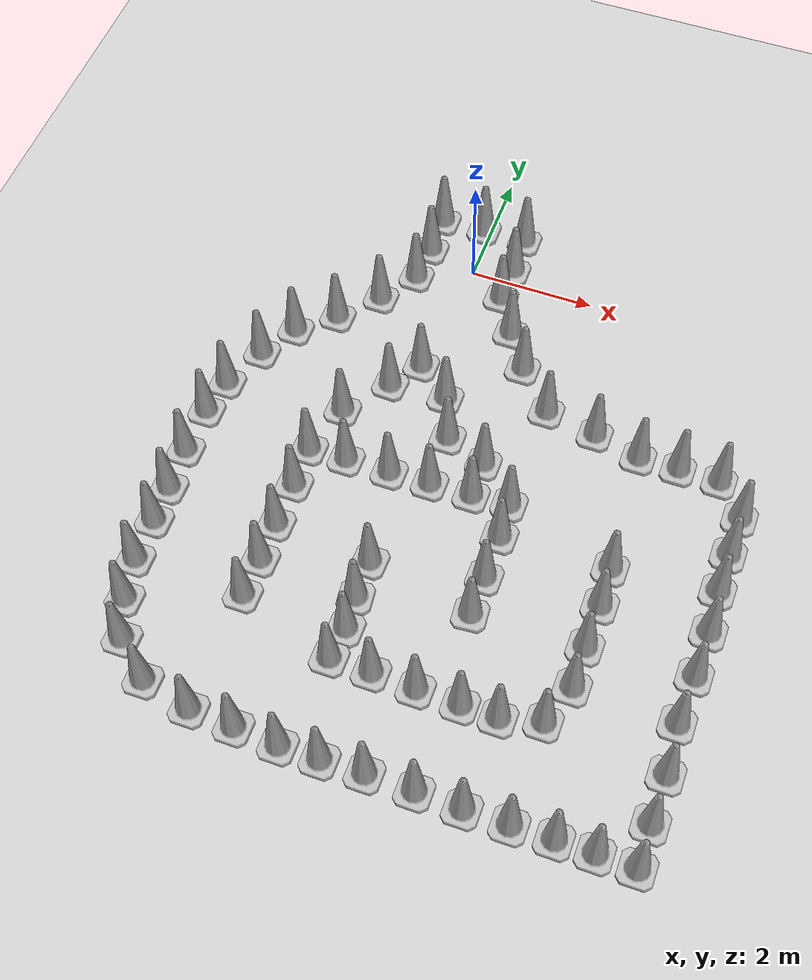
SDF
<sdf version="1.7">
 <world name="default">
  <light name="sun" type="directional">
   <pose>0 0 10 0 -0 0</pose>
   <diffuse>0.8 0.8 0.8 1</diffuse>
   <specular>0.2 0.2 0.2 1</specular>
   <attenuation>
    <range>1000</range>
    <constant>0.9</constant>
    <linear>0.01</linear>
    <quadratic>0.001</quadratic>
   </attenuation>
   <direction>-0.5 0.1 -0.9</direction>
   <spot><inner_angle>0</inner_angle><outer_angle>0</outer_angle><falloff>0</falloff></spot>
  </light>
  <model name="ground_plane">
   <static>1</static>
   <link name="link">
    <collision name="collision">
     <geometry><plane><normal>0 0 1</normal><size>100 100</size></plane></geometry>
     <surface><friction><ode><mu>100</mu><mu2>50</mu2></ode></friction></surface>
    </collision>
    <visual name="visual">
     <cast_shadows>0</cast_shadows>
     <geometry><plane><normal>0 0 1</normal><size>100 100</size></plane></geometry>
     <material>
      <script><uri>file://media/materials/scripts/gazebo.material</uri><name>Gazebo/Grey</name></script>
     </material>
    </visual>
   </link>
  </model>
  <gravity>0 0 -9.8</gravity>
  <magnetic_field>6e-06 2.3e-05 -4.2e-05</magnetic_field>
  <atmosphere type="adiabatic"/>
  <physics type="ode">
   <max_step_size>0.001</max_step_size>
   <real_time_factor>1</real_time_factor>
   <real_time_update_rate>1000</real_time_update_rate>
  </physics>
  <scene><ambient>0.4 0.4 0.4 1</ambient><background>0.7 0.7 0.7 1</background><shadows>1</shadows></scene>
  <audio><device>default</device></audio>
  <spherical_coordinates>
   <surface_model>EARTH_WGS84</surface_model>
   <latitude_deg>0</latitude_deg>
   <longitude_deg>0</longitude_deg>
   <elevation>0</elevation>
   <heading_deg>0</heading_deg>
  </spherical_coordinates>
  <model name="Construction Cone">
   <link name="link">
    <collision name="collision">
     <geometry>
      <mesh><scale>10 10 10</scale><uri>model://construction_cone/meshes/construction_cone.dae</uri></mesh>
     </geometry>
    </collision>
    <visual name="visual">
     <geometry>
      <mesh><scale>10 10 10</scale><uri>model://construction_cone/meshes/construction_cone.dae</uri></mesh>
     </geometry>
    </visual>
    <inertial>
     <inertia><ixx>1</ixx><ixy>0</ixy><ixz>0</ixz><iyy>1</iyy><iyz>0</iyz><izz>1</izz></inertia>
     <mass>1</mass>
    </inertial>
   </link>
   <pose>-0.809305 0.211558 -0 0 -1e-06 0</pose>
  </model>
  <model name="Construction Cone_0">
   <link name="link">
    <collision name="collision">
     <geometry>
      <mesh><scale>10 10 10</scale><uri>model://construction_cone/meshes/construction_cone.dae</uri></mesh>
     </geometry>
    </collision>
    <visual name="visual">
     <geometry>
      <mesh><scale>10 10 10</scale><uri>model://construction_cone/meshes/construction_cone.dae</uri></mesh>
     </geometry>
    </visual>
    <inertial>
     <inertia><ixx>1</ixx><ixy>0</ixy><ixz>0</ixz><iyy>1</iyy><iyz>0</iyz><izz>1</izz></inertia>
     <mass>1</mass>
    </inertial>
   </link>
   <pose>-0.824973 0.873573 -0 0 -0 0</pose>
  </model>
  <model name="Construction Cone_1">
   <link name="link">
    <collision name="collision">
     <geometry>
      <mesh><scale>10 10 10</scale><uri>model://construction_cone/meshes/construction_cone.dae</uri></mesh>
     </geometry>
    </collision>
    <visual name="visual">
     <geometry>
      <mesh><scale>10 10 10</scale><uri>model://construction_cone/meshes/construction_cone.dae</uri></mesh>
     </geometry>
    </visual>
    <inertial>
     <inertia><ixx>1</ixx><ixy>0</ixy><ixz>0</ixz><iyy>1</iyy><iyz>0</iyz><izz>1</izz></inertia>
     <mass>1</mass>
    </inertial>
   </link>
   <pose>-0.122 0.897798 -0 0 -1e-06 0</pose>
  </model>
  <model name="Construction Cone_2">
   <link name="link">
    <collision name="collision">
     <geometry>
      <mesh><scale>10 10 10</scale><uri>model://construction_cone/meshes/construction_cone.dae</uri></mesh>
     </geometry>
    </collision>
    <visual name="visual">
     <geometry>
      <mesh><scale>10 10 10</scale><uri>model://construction_cone/meshes/construction_cone.dae</uri></mesh>
     </geometry>
    </visual>
    <inertial>
     <inertia><ixx>1</ixx><ixy>0</ixy><ixz>0</ixz><iyy>1</iyy><iyz>0</iyz><izz>1</izz></inertia>
     <mass>1</mass>
    </inertial>
   </link>
   <pose>0.588672 0.899917 0 -0 -0 -0</pose>
  </model>
  <model name="Construction Cone_3">
   <link name="link">
    <collision name="collision">
     <geometry>
      <mesh><scale>10 10 10</scale><uri>model://construction_cone/meshes/construction_cone.dae</uri></mesh>
     </geometry>
    </collision>
    <visual name="visual">
     <geometry>
      <mesh><scale>10 10 10</scale><uri>model://construction_cone/meshes/construction_cone.dae</uri></mesh>
     </geometry>
    </visual>
    <inertial>
     <inertia><ixx>1</ixx><ixy>0</ixy><ixz>0</ixz><iyy>1</iyy><iyz>0</iyz><izz>1</izz></inertia>
     <mass>1</mass>
    </inertial>
   </link>
   <pose>0.612388 0.233933 -0 0 -1e-06 0</pose>
  </model>
  <model name="Construction Cone_4">
   <link name="link">
    <collision name="collision">
     <geometry>
      <mesh><scale>10 10 10</scale><uri>model://construction_cone/meshes/construction_cone.dae</uri></mesh>
     </geometry>
    </collision>
    <visual name="visual">
     <geometry>
      <mesh><scale>10 10 10</scale><uri>model://construction_cone/meshes/construction_cone.dae</uri></mesh>
     </geometry>
    </visual>
    <inertial>
     <inertia><ixx>1</ixx><ixy>0</ixy><ixz>0</ixz><iyy>1</iyy><iyz>0</iyz><izz>1</izz></inertia>
     <mass>1</mass>
    </inertial>
   </link>
   <pose>-0.844579 -0.414814 -0 0 -1e-06 0</pose>
  </model>
  <model name="Construction Cone_5">
   <link name="link">
    <collision name="collision">
     <geometry>
      <mesh><scale>10 10 10</scale><uri>model://construction_cone/meshes/construction_cone.dae</uri></mesh>
     </geometry>
    </collision>
    <visual name="visual">
     <geometry>
      <mesh><scale>10 10 10</scale><uri>model://construction_cone/meshes/construction_cone.dae</uri></mesh>
     </geometry>
    </visual>
    <inertial>
     <inertia><ixx>1</ixx><ixy>0</ixy><ixz>0</ixz><iyy>1</iyy><iyz>0</iyz><izz>1</izz></inertia>
     <mass>1</mass>
    </inertial>
   </link>
   <pose>0.598301 -0.373276 0 -1e-06 0 0</pose>
  </model>
  <model name="Construction Cone_6">
   <link name="link">
    <collision name="collision">
     <geometry>
      <mesh><scale>10 10 10</scale><uri>model://construction_cone/meshes/construction_cone.dae</uri></mesh>
     </geometry>
    </collision>
    <visual name="visual">
     <geometry>
      <mesh><scale>10 10 10</scale><uri>model://construction_cone/meshes/construction_cone.dae</uri></mesh>
     </geometry>
    </visual>
    <inertial>
     <inertia><ixx>1</ixx><ixy>0</ixy><ixz>0</ixz><iyy>1</iyy><iyz>0</iyz><izz>1</izz></inertia>
     <mass>1</mass>
    </inertial>
   </link>
   <pose>-0.155985 -2.07819 -0 0 -0 0</pose>
  </model>
  <model name="Construction Cone_7">
   <link name="link">
    <collision name="collision">
     <geometry>
      <mesh><scale>10 10 10</scale><uri>model://construction_cone/meshes/construction_cone.dae</uri></mesh>
     </geometry>
    </collision>
    <visual name="visual">
     <geometry>
      <mesh><scale>10 10 10</scale><uri>model://construction_cone/meshes/construction_cone.dae</uri></mesh>
     </geometry>
    </visual>
    <inertial>
     <inertia><ixx>1</ixx><ixy>0</ixy><ixz>0</ixz><iyy>1</iyy><iyz>0</iyz><izz>1</izz></inertia>
     <mass>1</mass>
    </inertial>
   </link>
   <pose>0.41274 -2.54412 -0 0 -0 0</pose>
  </model>
  <model name="Construction Cone_8">
   <link name="link">
    <collision name="collision">
     <geometry>
      <mesh><scale>10 10 10</scale><uri>model://construction_cone/meshes/construction_cone.dae</uri></mesh>
     </geometry>
    </collision>
    <visual name="visual">
     <geometry>
      <mesh><scale>10 10 10</scale><uri>model://construction_cone/meshes/construction_cone.dae</uri></mesh>
     </geometry>
    </visual>
    <inertial>
     <inertia><ixx>1</ixx><ixy>0</ixy><ixz>0</ixz><iyy>1</iyy><iyz>0</iyz><izz>1</izz></inertia>
     <mass>1</mass>
    </inertial>
   </link>
   <pose>-0.488465 -2.59078 -1e-05 0 0 -0.042077</pose>
  </model>
  <model name="Construction Cone_9">
   <link name="link">
    <collision name="collision">
     <geometry>
      <mesh><scale>10 10 10</scale><uri>model://construction_cone/meshes/construction_cone.dae</uri></mesh>
     </geometry>
    </collision>
    <visual name="visual">
     <geometry>
      <mesh><scale>10 10 10</scale><uri>model://construction_cone/meshes/construction_cone.dae</uri></mesh>
     </geometry>
    </visual>
    <inertial>
     <inertia><ixx>1</ixx><ixy>0</ixy><ixz>0</ixz><iyy>1</iyy><iyz>0</iyz><izz>1</izz></inertia>
     <mass>1</mass>
    </inertial>
   </link>
   <pose>-1.23728 -1.02411 -0 0 -0 0</pose>
  </model>
  <model name="Construction Cone_10">
   <link name="link">
    <collision name="collision">
     <geometry>
      <mesh><scale>10 10 10</scale><uri>model://construction_cone/meshes/construction_cone.dae</uri></mesh>
     </geometry>
    </collision>
    <visual name="visual">
     <geometry>
      <mesh><scale>10 10 10</scale><uri>model://construction_cone/meshes/construction_cone.dae</uri></mesh>
     </geometry>
    </visual>
    <inertial>
     <inertia><ixx>1</ixx><ixy>0</ixy><ixz>0</ixz><iyy>1</iyy><iyz>0</iyz><izz>1</izz></inertia>
     <mass>1</mass>
    </inertial>
   </link>
   <pose>-1.7548 -1.61581 -0 0 -1e-06 0</pose>
  </model>
  <model name="Construction Cone_11">
   <link name="link">
    <collision name="collision">
     <geometry>
      <mesh><scale>10 10 10</scale><uri>model://construction_cone/meshes/construction_cone.dae</uri></mesh>
     </geometry>
    </collision>
    <visual name="visual">
     <geometry>
      <mesh><scale>10 10 10</scale><uri>model://construction_cone/meshes/construction_cone.dae</uri></mesh>
     </geometry>
    </visual>
    <inertial>
     <inertia><ixx>1</ixx><ixy>0</ixy><ixz>0</ixz><iyy>1</iyy><iyz>0</iyz><izz>1</izz></inertia>
     <mass>1</mass>
    </inertial>
   </link>
   <pose>0.96804 -0.994563 -0 0 -0 0</pose>
  </model>
  <model name="Construction Cone_12">
   <link name="link">
    <collision name="collision">
     <geometry>
      <mesh><scale>10 10 10</scale><uri>model://construction_cone/meshes/construction_cone.dae</uri></mesh>
     </geometry>
    </collision>
    <visual name="visual">
     <geometry>
      <mesh><scale>10 10 10</scale><uri>model://construction_cone/meshes/construction_cone.dae</uri></mesh>
     </geometry>
    </visual>
    <inertial>
     <inertia><ixx>1</ixx><ixy>0</ixy><ixz>0</ixz><iyy>1</iyy><iyz>0</iyz><izz>1</izz></inertia>
     <mass>1</mass>
    </inertial>
   </link>
   <pose>1.36841 -1.60356 -0 0 -1e-06 0</pose>
  </model>
  <model name="Construction Cone_13">
   <link name="link">
    <collision name="collision">
     <geometry>
      <mesh><scale>10 10 10</scale><uri>model://construction_cone/meshes/construction_cone.dae</uri></mesh>
     </geometry>
    </collision>
    <visual name="visual">
     <geometry>
      <mesh><scale>10 10 10</scale><uri>model://construction_cone/meshes/construction_cone.dae</uri></mesh>
     </geometry>
    </visual>
    <inertial>
     <inertia><ixx>1</ixx><ixy>0</ixy><ixz>0</ixz><iyy>1</iyy><iyz>0</iyz><izz>1</izz></inertia>
     <mass>1</mass>
    </inertial>
   </link>
   <pose>1.9692 -2.26161 -0 0 -0 0</pose>
  </model>
  <model name="Construction Cone_14">
   <link name="link">
    <collision name="collision">
     <geometry>
      <mesh><scale>10 10 10</scale><uri>model://construction_cone/meshes/construction_cone.dae</uri></mesh>
     </geometry>
    </collision>
    <visual name="visual">
     <geometry>
      <mesh><scale>10 10 10</scale><uri>model://construction_cone/meshes/construction_cone.dae</uri></mesh>
     </geometry>
    </visual>
    <inertial>
     <inertia><ixx>1</ixx><ixy>0</ixy><ixz>0</ixz><iyy>1</iyy><iyz>0</iyz><izz>1</izz></inertia>
     <mass>1</mass>
    </inertial>
   </link>
   <pose>-2.62236 -2.6878 0 -0 -0 -0</pose>
  </model>
  <model name="Construction Cone_15">
   <link name="link">
    <collision name="collision">
     <geometry>
      <mesh><scale>10 10 10</scale><uri>model://construction_cone/meshes/construction_cone.dae</uri></mesh>
     </geometry>
    </collision>
    <visual name="visual">
     <geometry>
      <mesh><scale>10 10 10</scale><uri>model://construction_cone/meshes/construction_cone.dae</uri></mesh>
     </geometry>
    </visual>
    <inertial>
     <inertia><ixx>1</ixx><ixy>0</ixy><ixz>0</ixz><iyy>1</iyy><iyz>0</iyz><izz>1</izz></inertia>
     <mass>1</mass>
    </inertial>
   </link>
   <pose>-1.01192 -3.28616 -0 0 -1e-06 0</pose>
  </model>
  <model name="Construction Cone_16">
   <link name="link">
    <collision name="collision">
     <geometry>
      <mesh><scale>10 10 10</scale><uri>model://construction_cone/meshes/construction_cone.dae</uri></mesh>
     </geometry>
    </collision>
    <visual name="visual">
     <geometry>
      <mesh><scale>10 10 10</scale><uri>model://construction_cone/meshes/construction_cone.dae</uri></mesh>
     </geometry>
    </visual>
    <inertial>
     <inertia><ixx>1</ixx><ixy>0</ixy><ixz>0</ixz><iyy>1</iyy><iyz>0</iyz><izz>1</izz></inertia>
     <mass>1</mass>
    </inertial>
   </link>
   <pose>-0.630844 -4.11437 0 -0 -0 -0</pose>
  </model>
  <model name="Construction Cone_17">
   <link name="link">
    <collision name="collision">
     <geometry>
      <mesh><scale>10 10 10</scale><uri>model://construction_cone/meshes/construction_cone.dae</uri></mesh>
     </geometry>
    </collision>
    <visual name="visual">
     <geometry>
      <mesh><scale>10 10 10</scale><uri>model://construction_cone/meshes/construction_cone.dae</uri></mesh>
     </geometry>
    </visual>
    <inertial>
     <inertia><ixx>1</ixx><ixy>0</ixy><ixz>0</ixz><iyy>1</iyy><iyz>0</iyz><izz>1</izz></inertia>
     <mass>1</mass>
    </inertial>
   </link>
   <pose>-2.90275 -3.40357 -0 0 -1e-06 0</pose>
  </model>
  <model name="Construction Cone_18">
   <link name="link">
    <collision name="collision">
     <geometry>
      <mesh><scale>10 10 10</scale><uri>model://construction_cone/meshes/construction_cone.dae</uri></mesh>
     </geometry>
    </collision>
    <visual name="visual">
     <geometry>
      <mesh><scale>10 10 10</scale><uri>model://construction_cone/meshes/construction_cone.dae</uri></mesh>
     </geometry>
    </visual>
    <inertial>
     <inertia><ixx>1</ixx><ixy>0</ixy><ixz>0</ixz><iyy>1</iyy><iyz>0</iyz><izz>1</izz></inertia>
     <mass>1</mass>
    </inertial>
   </link>
   <pose>-2.99195 -4.00526 -0 0 -0 0</pose>
  </model>
  <model name="Construction Cone_19">
   <link name="link">
    <collision name="collision">
     <geometry>
      <mesh><scale>10 10 10</scale><uri>model://construction_cone/meshes/construction_cone.dae</uri></mesh>
     </geometry>
    </collision>
    <visual name="visual">
     <geometry>
      <mesh><scale>10 10 10</scale><uri>model://construction_cone/meshes/construction_cone.dae</uri></mesh>
     </geometry>
    </visual>
    <inertial>
     <inertia><ixx>1</ixx><ixy>0</ixy><ixz>0</ixz><iyy>1</iyy><iyz>0</iyz><izz>1</izz></inertia>
     <mass>1</mass>
    </inertial>
   </link>
   <pose>0.688549 -3.22558 -0 1e-06 -0 0</pose>
  </model>
  <model name="Construction Cone_20">
   <link name="link">
    <collision name="collision">
     <geometry>
      <mesh><scale>10 10 10</scale><uri>model://construction_cone/meshes/construction_cone.dae</uri></mesh>
     </geometry>
    </collision>
    <visual name="visual">
     <geometry>
      <mesh><scale>10 10 10</scale><uri>model://construction_cone/meshes/construction_cone.dae</uri></mesh>
     </geometry>
    </visual>
    <inertial>
     <inertia><ixx>1</ixx><ixy>0</ixy><ixz>0</ixz><iyy>1</iyy><iyz>0</iyz><izz>1</izz></inertia>
     <mass>1</mass>
    </inertial>
   </link>
   <pose>1.35417 -3.48511 -1e-05 -1e-06 0 0</pose>
  </model>
  <model name="Construction Cone_21">
   <link name="link">
    <collision name="collision">
     <geometry>
      <mesh><scale>10 10 10</scale><uri>model://construction_cone/meshes/construction_cone.dae</uri></mesh>
     </geometry>
    </collision>
    <visual name="visual">
     <geometry>
      <mesh><scale>10 10 10</scale><uri>model://construction_cone/meshes/construction_cone.dae</uri></mesh>
     </geometry>
    </visual>
    <inertial>
     <inertia><ixx>1</ixx><ixy>0</ixy><ixz>0</ixz><iyy>1</iyy><iyz>0</iyz><izz>1</izz></inertia>
     <mass>1</mass>
    </inertial>
   </link>
   <pose>1.95021 -4.04482 -0 0 -0 0</pose>
  </model>
  <model name="Construction Cone_22">
   <link name="link">
    <collision name="collision">
     <geometry>
      <mesh><scale>10 10 10</scale><uri>model://construction_cone/meshes/construction_cone.dae</uri></mesh>
     </geometry>
    </collision>
    <visual name="visual">
     <geometry>
      <mesh><scale>10 10 10</scale><uri>model://construction_cone/meshes/construction_cone.dae</uri></mesh>
     </geometry>
    </visual>
    <inertial>
     <inertia><ixx>1</ixx><ixy>0</ixy><ixz>0</ixz><iyy>1</iyy><iyz>0</iyz><izz>1</izz></inertia>
     <mass>1</mass>
    </inertial>
   </link>
   <pose>2.79642 -2.41741 -0 0 -1e-06 0</pose>
  </model>
  <model name="Construction Cone_23">
   <link name="link">
    <collision name="collision">
     <geometry>
      <mesh><scale>10 10 10</scale><uri>model://construction_cone/meshes/construction_cone.dae</uri></mesh>
     </geometry>
    </collision>
    <visual name="visual">
     <geometry>
      <mesh><scale>10 10 10</scale><uri>model://construction_cone/meshes/construction_cone.dae</uri></mesh>
     </geometry>
    </visual>
    <inertial>
     <inertia><ixx>1</ixx><ixy>0</ixy><ixz>0</ixz><iyy>1</iyy><iyz>0</iyz><izz>1</izz></inertia>
     <mass>1</mass>
    </inertial>
   </link>
   <pose>3.53893 -2.5999 -0 1e-06 -0 0</pose>
  </model>
  <model name="Construction Cone_24">
   <link name="link">
    <collision name="collision">
     <geometry>
      <mesh><scale>10 10 10</scale><uri>model://construction_cone/meshes/construction_cone.dae</uri></mesh>
     </geometry>
    </collision>
    <visual name="visual">
     <geometry>
      <mesh><scale>10 10 10</scale><uri>model://construction_cone/meshes/construction_cone.dae</uri></mesh>
     </geometry>
    </visual>
    <inertial>
     <inertia><ixx>1</ixx><ixy>0</ixy><ixz>0</ixz><iyy>1</iyy><iyz>0</iyz><izz>1</izz></inertia>
     <mass>1</mass>
    </inertial>
   </link>
   <pose>4.16332 -2.59635 -0 0 -1e-06 0</pose>
  </model>
  <model name="Construction Cone_25">
   <link name="link">
    <collision name="collision">
     <geometry>
      <mesh><scale>10 10 10</scale><uri>model://construction_cone/meshes/construction_cone.dae</uri></mesh>
     </geometry>
    </collision>
    <visual name="visual">
     <geometry>
      <mesh><scale>10 10 10</scale><uri>model://construction_cone/meshes/construction_cone.dae</uri></mesh>
     </geometry>
    </visual>
    <inertial>
     <inertia><ixx>1</ixx><ixy>0</ixy><ixz>0</ixz><iyy>1</iyy><iyz>0</iyz><izz>1</izz></inertia>
     <mass>1</mass>
    </inertial>
   </link>
   <pose>4.8047 -2.60471 -0 0 -0 0</pose>
  </model>
  <model name="Construction Cone_26">
   <link name="link">
    <collision name="collision">
     <geometry>
      <mesh><scale>10 10 10</scale><uri>model://construction_cone/meshes/construction_cone.dae</uri></mesh>
     </geometry>
    </collision>
    <visual name="visual">
     <geometry>
      <mesh><scale>10 10 10</scale><uri>model://construction_cone/meshes/construction_cone.dae</uri></mesh>
     </geometry>
    </visual>
    <inertial>
     <inertia><ixx>1</ixx><ixy>0</ixy><ixz>0</ixz><iyy>1</iyy><iyz>0</iyz><izz>1</izz></inertia>
     <mass>1</mass>
    </inertial>
   </link>
   <pose>0.067108 -4.11585 -0 0 -1e-06 0</pose>
  </model>
  <model name="Construction Cone_27">
   <link name="link">
    <collision name="collision">
     <geometry>
      <mesh><scale>10 10 10</scale><uri>model://construction_cone/meshes/construction_cone.dae</uri></mesh>
     </geometry>
    </collision>
    <visual name="visual">
     <geometry>
      <mesh><scale>10 10 10</scale><uri>model://construction_cone/meshes/construction_cone.dae</uri></mesh>
     </geometry>
    </visual>
    <inertial>
     <inertia><ixx>1</ixx><ixy>0</ixy><ixz>0</ixz><iyy>1</iyy><iyz>0</iyz><izz>1</izz></inertia>
     <mass>1</mass>
    </inertial>
   </link>
   <pose>0.710654 -4.09988 -0 0 -0 0</pose>
  </model>
  <model name="Construction Cone_28">
   <link name="link">
    <collision name="collision">
     <geometry>
      <mesh><scale>10 10 10</scale><uri>model://construction_cone/meshes/construction_cone.dae</uri></mesh>
     </geometry>
    </collision>
    <visual name="visual">
     <geometry>
      <mesh><scale>10 10 10</scale><uri>model://construction_cone/meshes/construction_cone.dae</uri></mesh>
     </geometry>
    </visual>
    <inertial>
     <inertia><ixx>1</ixx><ixy>0</ixy><ixz>0</ixz><iyy>1</iyy><iyz>0</iyz><izz>1</izz></inertia>
     <mass>1</mass>
    </inertial>
   </link>
   <pose>1.36649 -4.08736 -0 0 -0 0</pose>
  </model>
  <model name="Construction Cone_29">
   <link name="link">
    <collision name="collision">
     <geometry>
      <mesh><scale>10 10 10</scale><uri>model://construction_cone/meshes/construction_cone.dae</uri></mesh>
     </geometry>
    </collision>
    <visual name="visual">
     <geometry>
      <mesh><scale>10 10 10</scale><uri>model://construction_cone/meshes/construction_cone.dae</uri></mesh>
     </geometry>
    </visual>
    <inertial>
     <inertia><ixx>1</ixx><ixy>0</ixy><ixz>0</ixz><iyy>1</iyy><iyz>0</iyz><izz>1</izz></inertia>
     <mass>1</mass>
    </inertial>
   </link>
   <pose>1.99029 -4.61603 -0 0 -0 0</pose>
  </model>
  <model name="Construction Cone_30">
   <link name="link">
    <collision name="collision">
     <geometry>
      <mesh><scale>10 10 10</scale><uri>model://construction_cone/meshes/construction_cone.dae</uri></mesh>
     </geometry>
    </collision>
    <visual name="visual">
     <geometry>
      <mesh><scale>10 10 10</scale><uri>model://construction_cone/meshes/construction_cone.dae</uri></mesh>
     </geometry>
    </visual>
    <inertial>
     <inertia><ixx>1</ixx><ixy>0</ixy><ixz>0</ixz><iyy>1</iyy><iyz>0</iyz><izz>1</izz></inertia>
     <mass>1</mass>
    </inertial>
   </link>
   <pose>1.99926 -5.33411 -0 0 -1e-06 0</pose>
  </model>
  <model name="Construction Cone_31">
   <link name="link">
    <collision name="collision">
     <geometry>
      <mesh><scale>10 10 10</scale><uri>model://construction_cone/meshes/construction_cone.dae</uri></mesh>
     </geometry>
    </collision>
    <visual name="visual">
     <geometry>
      <mesh><scale>10 10 10</scale><uri>model://construction_cone/meshes/construction_cone.dae</uri></mesh>
     </geometry>
    </visual>
    <inertial>
     <inertia><ixx>1</ixx><ixy>0</ixy><ixz>0</ixz><iyy>1</iyy><iyz>0</iyz><izz>1</izz></inertia>
     <mass>1</mass>
    </inertial>
   </link>
   <pose>2.00267 -5.9659 -1e-06 2e-06 2e-06 0.080893</pose>
  </model>
  <model name="Construction Cone_32">
   <link name="link">
    <collision name="collision">
     <geometry>
      <mesh><scale>10 10 10</scale><uri>model://construction_cone/meshes/construction_cone.dae</uri></mesh>
     </geometry>
    </collision>
    <visual name="visual">
     <geometry>
      <mesh><scale>10 10 10</scale><uri>model://construction_cone/meshes/construction_cone.dae</uri></mesh>
     </geometry>
    </visual>
    <inertial>
     <inertia><ixx>1</ixx><ixy>0</ixy><ixz>0</ixz><iyy>1</iyy><iyz>0</iyz><izz>1</izz></inertia>
     <mass>1</mass>
    </inertial>
   </link>
   <pose>3.67763 -4.57909 -1e-05 0 -0 0</pose>
  </model>
  <model name="Construction Cone_33">
   <link name="link">
    <collision name="collision">
     <geometry>
      <mesh><scale>10 10 10</scale><uri>model://construction_cone/meshes/construction_cone.dae</uri></mesh>
     </geometry>
    </collision>
    <visual name="visual">
     <geometry>
      <mesh><scale>10 10 10</scale><uri>model://construction_cone/meshes/construction_cone.dae</uri></mesh>
     </geometry>
    </visual>
    <inertial>
     <inertia><ixx>1</ixx><ixy>0</ixy><ixz>0</ixz><iyy>1</iyy><iyz>0</iyz><izz>1</izz></inertia>
     <mass>1</mass>
    </inertial>
   </link>
   <pose>3.70798 -5.21498 -0 1e-06 -0 0</pose>
  </model>
  <model name="Construction Cone_34">
   <link name="link">
    <collision name="collision">
     <geometry>
      <mesh><scale>10 10 10</scale><uri>model://construction_cone/meshes/construction_cone.dae</uri></mesh>
     </geometry>
    </collision>
    <visual name="visual">
     <geometry>
      <mesh><scale>10 10 10</scale><uri>model://construction_cone/meshes/construction_cone.dae</uri></mesh>
     </geometry>
    </visual>
    <inertial>
     <inertia><ixx>1</ixx><ixy>0</ixy><ixz>0</ixz><iyy>1</iyy><iyz>0</iyz><izz>1</izz></inertia>
     <mass>1</mass>
    </inertial>
   </link>
   <pose>3.69829 -5.91716 -0 -0 -0 -0</pose>
  </model>
  <model name="Construction Cone_35">
   <link name="link">
    <collision name="collision">
     <geometry>
      <mesh><scale>10 10 10</scale><uri>model://construction_cone/meshes/construction_cone.dae</uri></mesh>
     </geometry>
    </collision>
    <visual name="visual">
     <geometry>
      <mesh><scale>10 10 10</scale><uri>model://construction_cone/meshes/construction_cone.dae</uri></mesh>
     </geometry>
    </visual>
    <inertial>
     <inertia><ixx>1</ixx><ixy>0</ixy><ixz>0</ixz><iyy>1</iyy><iyz>0</iyz><izz>1</izz></inertia>
     <mass>1</mass>
    </inertial>
   </link>
   <pose>3.70821 -6.57058 -0 -0 -0 -0</pose>
  </model>
  <model name="Construction Cone_36">
   <link name="link">
    <collision name="collision">
     <geometry>
      <mesh><scale>10 10 10</scale><uri>model://construction_cone/meshes/construction_cone.dae</uri></mesh>
     </geometry>
    </collision>
    <visual name="visual">
     <geometry>
      <mesh><scale>10 10 10</scale><uri>model://construction_cone/meshes/construction_cone.dae</uri></mesh>
     </geometry>
    </visual>
    <inertial>
     <inertia><ixx>1</ixx><ixy>0</ixy><ixz>0</ixz><iyy>1</iyy><iyz>0</iyz><izz>1</izz></inertia>
     <mass>1</mass>
    </inertial>
   </link>
   <pose>3.49364 -7.20478 -0 0 -1e-06 -7.4e-05</pose>
  </model>
  <model name="Construction Cone_37">
   <link name="link">
    <collision name="collision">
     <geometry>
      <mesh><scale>10 10 10</scale><uri>model://construction_cone/meshes/construction_cone.dae</uri></mesh>
     </geometry>
    </collision>
    <visual name="visual">
     <geometry>
      <mesh><scale>10 10 10</scale><uri>model://construction_cone/meshes/construction_cone.dae</uri></mesh>
     </geometry>
    </visual>
    <inertial>
     <inertia><ixx>1</ixx><ixy>0</ixy><ixz>0</ixz><iyy>1</iyy><iyz>0</iyz><izz>1</izz></inertia>
     <mass>1</mass>
    </inertial>
   </link>
   <pose>2.8848 -7.35347 -0 1e-06 -0 0</pose>
  </model>
  <model name="Construction Cone_38">
   <link name="link">
    <collision name="collision">
     <geometry>
      <mesh><scale>10 10 10</scale><uri>model://construction_cone/meshes/construction_cone.dae</uri></mesh>
     </geometry>
    </collision>
    <visual name="visual">
     <geometry>
      <mesh><scale>10 10 10</scale><uri>model://construction_cone/meshes/construction_cone.dae</uri></mesh>
     </geometry>
    </visual>
    <inertial>
     <inertia><ixx>1</ixx><ixy>0</ixy><ixz>0</ixz><iyy>1</iyy><iyz>0</iyz><izz>1</izz></inertia>
     <mass>1</mass>
    </inertial>
   </link>
   <pose>1.66883 -7.32825 -0 -0 -0 -0</pose>
  </model>
  <model name="Construction Cone_39">
   <link name="link">
    <collision name="collision">
     <geometry>
      <mesh><scale>10 10 10</scale><uri>model://construction_cone/meshes/construction_cone.dae</uri></mesh>
     </geometry>
    </collision>
    <visual name="visual">
     <geometry>
      <mesh><scale>10 10 10</scale><uri>model://construction_cone/meshes/construction_cone.dae</uri></mesh>
     </geometry>
    </visual>
    <inertial>
     <inertia><ixx>1</ixx><ixy>0</ixy><ixz>0</ixz><iyy>1</iyy><iyz>0</iyz><izz>1</izz></inertia>
     <mass>1</mass>
    </inertial>
   </link>
   <pose>0.993685 -7.29645 -0 0 -1e-06 0</pose>
  </model>
  <model name="Construction Cone_40">
   <link name="link">
    <collision name="collision">
     <geometry>
      <mesh><scale>10 10 10</scale><uri>model://construction_cone/meshes/construction_cone.dae</uri></mesh>
     </geometry>
    </collision>
    <visual name="visual">
     <geometry>
      <mesh><scale>10 10 10</scale><uri>model://construction_cone/meshes/construction_cone.dae</uri></mesh>
     </geometry>
    </visual>
    <inertial>
     <inertia><ixx>1</ixx><ixy>0</ixy><ixz>0</ixz><iyy>1</iyy><iyz>0</iyz><izz>1</izz></inertia>
     <mass>1</mass>
    </inertial>
   </link>
   <pose>0.360509 -7.28962 -0 -0 -0 -0</pose>
  </model>
  <model name="Construction Cone_41">
   <link name="link">
    <collision name="collision">
     <geometry>
      <mesh><scale>10 10 10</scale><uri>model://construction_cone/meshes/construction_cone.dae</uri></mesh>
     </geometry>
    </collision>
    <visual name="visual">
     <geometry>
      <mesh><scale>10 10 10</scale><uri>model://construction_cone/meshes/construction_cone.dae</uri></mesh>
     </geometry>
    </visual>
    <inertial>
     <inertia><ixx>1</ixx><ixy>0</ixy><ixz>0</ixz><iyy>1</iyy><iyz>0</iyz><izz>1</izz></inertia>
     <mass>1</mass>
    </inertial>
   </link>
   <pose>-2.9912 -4.77334 -0 0 -1e-06 0</pose>
  </model>
  <model name="Construction Cone_42">
   <link name="link">
    <collision name="collision">
     <geometry>
      <mesh><scale>10 10 10</scale><uri>model://construction_cone/meshes/construction_cone.dae</uri></mesh>
     </geometry>
    </collision>
    <visual name="visual">
     <geometry>
      <mesh><scale>10 10 10</scale><uri>model://construction_cone/meshes/construction_cone.dae</uri></mesh>
     </geometry>
    </visual>
    <inertial>
     <inertia><ixx>1</ixx><ixy>0</ixy><ixz>0</ixz><iyy>1</iyy><iyz>0</iyz><izz>1</izz></inertia>
     <mass>1</mass>
    </inertial>
   </link>
   <pose>-2.95003 -5.47306 -0 0 -1e-06 0</pose>
  </model>
  <model name="Construction Cone_43">
   <link name="link">
    <collision name="collision">
     <geometry>
      <mesh><scale>10 10 10</scale><uri>model://construction_cone/meshes/construction_cone.dae</uri></mesh>
     </geometry>
    </collision>
    <visual name="visual">
     <geometry>
      <mesh><scale>10 10 10</scale><uri>model://construction_cone/meshes/construction_cone.dae</uri></mesh>
     </geometry>
    </visual>
    <inertial>
     <inertia><ixx>1</ixx><ixy>0</ixy><ixz>0</ixz><iyy>1</iyy><iyz>0</iyz><izz>1</izz></inertia>
     <mass>1</mass>
    </inertial>
   </link>
   <pose>0.341875 -5.64309 -0 0 -1e-06 -0.023101</pose>
  </model>
  <model name="Construction Cone_44">
   <link name="link">
    <collision name="collision">
     <geometry>
      <mesh><scale>10 10 10</scale><uri>model://construction_cone/meshes/construction_cone.dae</uri></mesh>
     </geometry>
    </collision>
    <visual name="visual">
     <geometry>
      <mesh><scale>10 10 10</scale><uri>model://construction_cone/meshes/construction_cone.dae</uri></mesh>
     </geometry>
    </visual>
    <inertial>
     <inertia><ixx>1</ixx><ixy>0</ixy><ixz>0</ixz><iyy>1</iyy><iyz>0</iyz><izz>1</izz></inertia>
     <mass>1</mass>
    </inertial>
   </link>
   <pose>0.359751 -6.25639 0 0 -0 0.112263</pose>
  </model>
  <model name="Construction Cone_45">
   <link name="link">
    <collision name="collision">
     <geometry>
      <mesh><scale>10 10 10</scale><uri>model://construction_cone/meshes/construction_cone.dae</uri></mesh>
     </geometry>
    </collision>
    <visual name="visual">
     <geometry>
      <mesh><scale>10 10 10</scale><uri>model://construction_cone/meshes/construction_cone.dae</uri></mesh>
     </geometry>
    </visual>
    <inertial>
     <inertia><ixx>1</ixx><ixy>0</ixy><ixz>0</ixz><iyy>1</iyy><iyz>0</iyz><izz>1</izz></inertia>
     <mass>1</mass>
    </inertial>
   </link>
   <pose>0.40682 -6.77431 -1e-05 -1e-06 -0 0.003424</pose>
  </model>
  <model name="Construction Cone_46">
   <link name="link">
    <collision name="collision">
     <geometry>
      <mesh><scale>10 10 10</scale><uri>model://construction_cone/meshes/construction_cone.dae</uri></mesh>
     </geometry>
    </collision>
    <visual name="visual">
     <geometry>
      <mesh><scale>10 10 10</scale><uri>model://construction_cone/meshes/construction_cone.dae</uri></mesh>
     </geometry>
    </visual>
    <inertial>
     <inertia><ixx>1</ixx><ixy>0</ixy><ixz>0</ixz><iyy>1</iyy><iyz>0</iyz><izz>1</izz></inertia>
     <mass>1</mass>
    </inertial>
   </link>
   <pose>-1.22958 -4.12359 -0 1e-06 -0 0</pose>
  </model>
  <model name="Construction Cone_47">
   <link name="link">
    <collision name="collision">
     <geometry>
      <mesh><scale>10 10 10</scale><uri>model://construction_cone/meshes/construction_cone.dae</uri></mesh>
     </geometry>
    </collision>
    <visual name="visual">
     <geometry>
      <mesh><scale>10 10 10</scale><uri>model://construction_cone/meshes/construction_cone.dae</uri></mesh>
     </geometry>
    </visual>
    <inertial>
     <inertia><ixx>1</ixx><ixy>0</ixy><ixz>0</ixz><iyy>1</iyy><iyz>0</iyz><izz>1</izz></inertia>
     <mass>1</mass>
    </inertial>
   </link>
   <pose>-1.20017 -4.79394 -1e-05 -1e-06 0 0</pose>
  </model>
  <model name="Construction Cone_48">
   <link name="link">
    <collision name="collision">
     <geometry>
      <mesh><scale>10 10 10</scale><uri>model://construction_cone/meshes/construction_cone.dae</uri></mesh>
     </geometry>
    </collision>
    <visual name="visual">
     <geometry>
      <mesh><scale>10 10 10</scale><uri>model://construction_cone/meshes/construction_cone.dae</uri></mesh>
     </geometry>
    </visual>
    <inertial>
     <inertia><ixx>1</ixx><ixy>0</ixy><ixz>0</ixz><iyy>1</iyy><iyz>0</iyz><izz>1</izz></inertia>
     <mass>1</mass>
    </inertial>
   </link>
   <pose>-1.19021 -5.51265 -0 0 -0 0</pose>
  </model>
  <model name="Construction Cone_49">
   <link name="link">
    <collision name="collision">
     <geometry>
      <mesh><scale>10 10 10</scale><uri>model://construction_cone/meshes/construction_cone.dae</uri></mesh>
     </geometry>
    </collision>
    <visual name="visual">
     <geometry>
      <mesh><scale>10 10 10</scale><uri>model://construction_cone/meshes/construction_cone.dae</uri></mesh>
     </geometry>
    </visual>
    <inertial>
     <inertia><ixx>1</ixx><ixy>0</ixy><ixz>0</ixz><iyy>1</iyy><iyz>0</iyz><izz>1</izz></inertia>
     <mass>1</mass>
    </inertial>
   </link>
   <pose>-1.17563 -6.1478 -0 0 -1e-06 0</pose>
  </model>
  <model name="Construction Cone_50">
   <link name="link">
    <collision name="collision">
     <geometry>
      <mesh><scale>10 10 10</scale><uri>model://construction_cone/meshes/construction_cone.dae</uri></mesh>
     </geometry>
    </collision>
    <visual name="visual">
     <geometry>
      <mesh><scale>10 10 10</scale><uri>model://construction_cone/meshes/construction_cone.dae</uri></mesh>
     </geometry>
    </visual>
    <inertial>
     <inertia><ixx>1</ixx><ixy>0</ixy><ixz>0</ixz><iyy>1</iyy><iyz>0</iyz><izz>1</izz></inertia>
     <mass>1</mass>
    </inertial>
   </link>
   <pose>-1.18444 -6.76954 -0 0 -0 0</pose>
  </model>
  <model name="Construction Cone_51">
   <link name="link">
    <collision name="collision">
     <geometry>
      <mesh><scale>10 10 10</scale><uri>model://construction_cone/meshes/construction_cone.dae</uri></mesh>
     </geometry>
    </collision>
    <visual name="visual">
     <geometry>
      <mesh><scale>10 10 10</scale><uri>model://construction_cone/meshes/construction_cone.dae</uri></mesh>
     </geometry>
    </visual>
    <inertial>
     <inertia><ixx>1</ixx><ixy>0</ixy><ixz>0</ixz><iyy>1</iyy><iyz>0</iyz><izz>1</izz></inertia>
     <mass>1</mass>
    </inertial>
   </link>
   <pose>0.189917 -8.74267 -0 0 -1e-06 0</pose>
  </model>
  <model name="Construction Cone_52">
   <link name="link">
    <collision name="collision">
     <geometry>
      <mesh><scale>10 10 10</scale><uri>model://construction_cone/meshes/construction_cone.dae</uri></mesh>
     </geometry>
    </collision>
    <visual name="visual">
     <geometry>
      <mesh><scale>10 10 10</scale><uri>model://construction_cone/meshes/construction_cone.dae</uri></mesh>
     </geometry>
    </visual>
    <inertial>
     <inertia><ixx>1</ixx><ixy>0</ixy><ixz>0</ixz><iyy>1</iyy><iyz>0</iyz><izz>1</izz></inertia>
     <mass>1</mass>
    </inertial>
   </link>
   <pose>-0.489364 -8.69694 -9e-06 -4e-06 -0 -0</pose>
  </model>
  <model name="Construction Cone_53">
   <link name="link">
    <collision name="collision">
     <geometry>
      <mesh><scale>10 10 10</scale><uri>model://construction_cone/meshes/construction_cone.dae</uri></mesh>
     </geometry>
    </collision>
    <visual name="visual">
     <geometry>
      <mesh><scale>10 10 10</scale><uri>model://construction_cone/meshes/construction_cone.dae</uri></mesh>
     </geometry>
    </visual>
    <inertial>
     <inertia><ixx>1</ixx><ixy>0</ixy><ixz>0</ixz><iyy>1</iyy><iyz>0</iyz><izz>1</izz></inertia>
     <mass>1</mass>
    </inertial>
   </link>
   <pose>-1.17775 -8.65866 -0 0 -0 0</pose>
  </model>
  <model name="Construction Cone_54">
   <link name="link">
    <collision name="collision">
     <geometry>
      <mesh><scale>10 10 10</scale><uri>model://construction_cone/meshes/construction_cone.dae</uri></mesh>
     </geometry>
    </collision>
    <visual name="visual">
     <geometry>
      <mesh><scale>10 10 10</scale><uri>model://construction_cone/meshes/construction_cone.dae</uri></mesh>
     </geometry>
    </visual>
    <inertial>
     <inertia><ixx>1</ixx><ixy>0</ixy><ixz>0</ixz><iyy>1</iyy><iyz>0</iyz><izz>1</izz></inertia>
     <mass>1</mass>
    </inertial>
   </link>
   <pose>-1.96145 -8.47289 0 -0 -0 -0</pose>
  </model>
  <model name="Construction Cone_55">
   <link name="link">
    <collision name="collision">
     <geometry>
      <mesh><scale>10 10 10</scale><uri>model://construction_cone/meshes/construction_cone.dae</uri></mesh>
     </geometry>
    </collision>
    <visual name="visual">
     <geometry>
      <mesh><scale>10 10 10</scale><uri>model://construction_cone/meshes/construction_cone.dae</uri></mesh>
     </geometry>
    </visual>
    <inertial>
     <inertia><ixx>1</ixx><ixy>0</ixy><ixz>0</ixz><iyy>1</iyy><iyz>0</iyz><izz>1</izz></inertia>
     <mass>1</mass>
    </inertial>
   </link>
   <pose>-2.5184 -7.98982 -0 0 -0 0</pose>
  </model>
  <model name="Construction Cone_56">
   <link name="link">
    <collision name="collision">
     <geometry>
      <mesh><scale>10 10 10</scale><uri>model://construction_cone/meshes/construction_cone.dae</uri></mesh>
     </geometry>
    </collision>
    <visual name="visual">
     <geometry>
      <mesh><scale>10 10 10</scale><uri>model://construction_cone/meshes/construction_cone.dae</uri></mesh>
     </geometry>
    </visual>
    <inertial>
     <inertia><ixx>1</ixx><ixy>0</ixy><ixz>0</ixz><iyy>1</iyy><iyz>0</iyz><izz>1</izz></inertia>
     <mass>1</mass>
    </inertial>
   </link>
   <pose>-2.76186 -7.39386 -0 0 -1e-06 0</pose>
  </model>
  <model name="Construction Cone_57">
   <link name="link">
    <collision name="collision">
     <geometry>
      <mesh><scale>10 10 10</scale><uri>model://construction_cone/meshes/construction_cone.dae</uri></mesh>
     </geometry>
    </collision>
    <visual name="visual">
     <geometry>
      <mesh><scale>10 10 10</scale><uri>model://construction_cone/meshes/construction_cone.dae</uri></mesh>
     </geometry>
    </visual>
    <inertial>
     <inertia><ixx>1</ixx><ixy>0</ixy><ixz>0</ixz><iyy>1</iyy><iyz>0</iyz><izz>1</izz></inertia>
     <mass>1</mass>
    </inertial>
   </link>
   <pose>-2.89336 -6.75369 -1e-06 1e-06 -2e-06 -0</pose>
  </model>
  <model name="Construction Cone_58">
   <link name="link">
    <collision name="collision">
     <geometry>
      <mesh><scale>10 10 10</scale><uri>model://construction_cone/meshes/construction_cone.dae</uri></mesh>
     </geometry>
    </collision>
    <visual name="visual">
     <geometry>
      <mesh><scale>10 10 10</scale><uri>model://construction_cone/meshes/construction_cone.dae</uri></mesh>
     </geometry>
    </visual>
    <inertial>
     <inertia><ixx>1</ixx><ixy>0</ixy><ixz>0</ixz><iyy>1</iyy><iyz>0</iyz><izz>1</izz></inertia>
     <mass>1</mass>
    </inertial>
   </link>
   <pose>-2.91404 -6.0705 -0 1e-06 -0 0</pose>
  </model>
  <model name="Construction Cone_59">
   <link name="link">
    <collision name="collision">
     <geometry>
      <mesh><scale>10 10 10</scale><uri>model://construction_cone/meshes/construction_cone.dae</uri></mesh>
     </geometry>
    </collision>
    <visual name="visual">
     <geometry>
      <mesh><scale>10 10 10</scale><uri>model://construction_cone/meshes/construction_cone.dae</uri></mesh>
     </geometry>
    </visual>
    <inertial>
     <inertia><ixx>1</ixx><ixy>0</ixy><ixz>0</ixz><iyy>1</iyy><iyz>0</iyz><izz>1</izz></inertia>
     <mass>1</mass>
    </inertial>
   </link>
   <pose>-2.2892 -2.08688 -1e-05 -0 -0 -0</pose>
  </model>
  <model name="Construction Cone_60">
   <link name="link">
    <collision name="collision">
     <geometry>
      <mesh><scale>10 10 10</scale><uri>model://construction_cone/meshes/construction_cone.dae</uri></mesh>
     </geometry>
    </collision>
    <visual name="visual">
     <geometry>
      <mesh><scale>10 10 10</scale><uri>model://construction_cone/meshes/construction_cone.dae</uri></mesh>
     </geometry>
    </visual>
    <inertial>
     <inertia><ixx>1</ixx><ixy>0</ixy><ixz>0</ixz><iyy>1</iyy><iyz>0</iyz><izz>1</izz></inertia>
     <mass>1</mass>
    </inertial>
   </link>
   <pose>5.24491 -3.13122 -0 0 -1e-06 0</pose>
  </model>
  <model name="Construction Cone_61">
   <link name="link">
    <collision name="collision">
     <geometry>
      <mesh><scale>10 10 10</scale><uri>model://construction_cone/meshes/construction_cone.dae</uri></mesh>
     </geometry>
    </collision>
    <visual name="visual">
     <geometry>
      <mesh><scale>10 10 10</scale><uri>model://construction_cone/meshes/construction_cone.dae</uri></mesh>
     </geometry>
    </visual>
    <inertial>
     <inertia><ixx>1</ixx><ixy>0</ixy><ixz>0</ixz><iyy>1</iyy><iyz>0</iyz><izz>1</izz></inertia>
     <mass>1</mass>
    </inertial>
   </link>
   <pose>5.23878 -3.78112 -0 0 -1e-06 0</pose>
  </model>
  <model name="Construction Cone_62">
   <link name="link">
    <collision name="collision">
     <geometry>
      <mesh><scale>10 10 10</scale><uri>model://construction_cone/meshes/construction_cone.dae</uri></mesh>
     </geometry>
    </collision>
    <visual name="visual">
     <geometry>
      <mesh><scale>10 10 10</scale><uri>model://construction_cone/meshes/construction_cone.dae</uri></mesh>
     </geometry>
    </visual>
    <inertial>
     <inertia><ixx>1</ixx><ixy>0</ixy><ixz>0</ixz><iyy>1</iyy><iyz>0</iyz><izz>1</izz></inertia>
     <mass>1</mass>
    </inertial>
   </link>
   <pose>5.24158 -4.42166 -0 0 -1e-06 0</pose>
  </model>
  <model name="Construction Cone_63">
   <link name="link">
    <collision name="collision">
     <geometry>
      <mesh><scale>10 10 10</scale><uri>model://construction_cone/meshes/construction_cone.dae</uri></mesh>
     </geometry>
    </collision>
    <visual name="visual">
     <geometry>
      <mesh><scale>10 10 10</scale><uri>model://construction_cone/meshes/construction_cone.dae</uri></mesh>
     </geometry>
    </visual>
    <inertial>
     <inertia><ixx>1</ixx><ixy>0</ixy><ixz>0</ixz><iyy>1</iyy><iyz>0</iyz><izz>1</izz></inertia>
     <mass>1</mass>
    </inertial>
   </link>
   <pose>5.28186 -5.10717 -0 0 -1e-06 0</pose>
  </model>
  <model name="Construction Cone_64">
   <link name="link">
    <collision name="collision">
     <geometry>
      <mesh><scale>10 10 10</scale><uri>model://construction_cone/meshes/construction_cone.dae</uri></mesh>
     </geometry>
    </collision>
    <visual name="visual">
     <geometry>
      <mesh><scale>10 10 10</scale><uri>model://construction_cone/meshes/construction_cone.dae</uri></mesh>
     </geometry>
    </visual>
    <inertial>
     <inertia><ixx>1</ixx><ixy>0</ixy><ixz>0</ixz><iyy>1</iyy><iyz>0</iyz><izz>1</izz></inertia>
     <mass>1</mass>
    </inertial>
   </link>
   <pose>5.26813 -5.83939 -0 0 -0 0</pose>
  </model>
  <model name="Construction Cone_65">
   <link name="link">
    <collision name="collision">
     <geometry>
      <mesh><scale>10 10 10</scale><uri>model://construction_cone/meshes/construction_cone.dae</uri></mesh>
     </geometry>
    </collision>
    <visual name="visual">
     <geometry>
      <mesh><scale>10 10 10</scale><uri>model://construction_cone/meshes/construction_cone.dae</uri></mesh>
     </geometry>
    </visual>
    <inertial>
     <inertia><ixx>1</ixx><ixy>0</ixy><ixz>0</ixz><iyy>1</iyy><iyz>0</iyz><izz>1</izz></inertia>
     <mass>1</mass>
    </inertial>
   </link>
   <pose>5.22758 -6.60859 0 -1e-06 0 0</pose>
  </model>
  <model name="Construction Cone_66">
   <link name="link">
    <collision name="collision">
     <geometry>
      <mesh><scale>10 10 10</scale><uri>model://construction_cone/meshes/construction_cone.dae</uri></mesh>
     </geometry>
    </collision>
    <visual name="visual">
     <geometry>
      <mesh><scale>10 10 10</scale><uri>model://construction_cone/meshes/construction_cone.dae</uri></mesh>
     </geometry>
    </visual>
    <inertial>
     <inertia><ixx>1</ixx><ixy>0</ixy><ixz>0</ixz><iyy>1</iyy><iyz>0</iyz><izz>1</izz></inertia>
     <mass>1</mass>
    </inertial>
   </link>
   <pose>5.27858 -7.376 -0 0 -1e-06 0</pose>
  </model>
  <model name="Construction Cone_67">
   <link name="link">
    <collision name="collision">
     <geometry>
      <mesh><scale>10 10 10</scale><uri>model://construction_cone/meshes/construction_cone.dae</uri></mesh>
     </geometry>
    </collision>
    <visual name="visual">
     <geometry>
      <mesh><scale>10 10 10</scale><uri>model://construction_cone/meshes/construction_cone.dae</uri></mesh>
     </geometry>
    </visual>
    <inertial>
     <inertia><ixx>1</ixx><ixy>0</ixy><ixz>0</ixz><iyy>1</iyy><iyz>0</iyz><izz>1</izz></inertia>
     <mass>1</mass>
    </inertial>
   </link>
   <pose>5.26569 -8.11282 -8e-06 -4e-06 1e-06 0</pose>
  </model>
  <model name="Construction Cone_68">
   <link name="link">
    <collision name="collision">
     <geometry>
      <mesh><scale>10 10 10</scale><uri>model://construction_cone/meshes/construction_cone.dae</uri></mesh>
     </geometry>
    </collision>
    <visual name="visual">
     <geometry>
      <mesh><scale>10 10 10</scale><uri>model://construction_cone/meshes/construction_cone.dae</uri></mesh>
     </geometry>
    </visual>
    <inertial>
     <inertia><ixx>1</ixx><ixy>0</ixy><ixz>0</ixz><iyy>1</iyy><iyz>0</iyz><izz>1</izz></inertia>
     <mass>1</mass>
    </inertial>
   </link>
   <pose>5.26723 -8.75225 -1e-05 0 1e-06 0</pose>
  </model>
  <model name="Construction Cone_69">
   <link name="link">
    <collision name="collision">
     <geometry>
      <mesh><scale>10 10 10</scale><uri>model://construction_cone/meshes/construction_cone.dae</uri></mesh>
     </geometry>
    </collision>
    <visual name="visual">
     <geometry>
      <mesh><scale>10 10 10</scale><uri>model://construction_cone/meshes/construction_cone.dae</uri></mesh>
     </geometry>
    </visual>
    <inertial>
     <inertia><ixx>1</ixx><ixy>0</ixy><ixz>0</ixz><iyy>1</iyy><iyz>0</iyz><izz>1</izz></inertia>
     <mass>1</mass>
    </inertial>
   </link>
   <pose>2.32824 -7.34365 -0 0 -1e-06 0</pose>
  </model>
  <model name="Construction Cone_70">
   <link name="link">
    <collision name="collision">
     <geometry>
      <mesh><scale>10 10 10</scale><uri>model://construction_cone/meshes/construction_cone.dae</uri></mesh>
     </geometry>
    </collision>
    <visual name="visual">
     <geometry>
      <mesh><scale>10 10 10</scale><uri>model://construction_cone/meshes/construction_cone.dae</uri></mesh>
     </geometry>
    </visual>
    <inertial>
     <inertia><ixx>1</ixx><ixy>0</ixy><ixz>0</ixz><iyy>1</iyy><iyz>0</iyz><izz>1</izz></inertia>
     <mass>1</mass>
    </inertial>
   </link>
   <pose>0.798417 -8.74101 -0 0 -1e-06 0</pose>
  </model>
  <model name="Construction Cone_71">
   <link name="link">
    <collision name="collision">
     <geometry>
      <mesh><scale>10 10 10</scale><uri>model://construction_cone/meshes/construction_cone.dae</uri></mesh>
     </geometry>
    </collision>
    <visual name="visual">
     <geometry>
      <mesh><scale>10 10 10</scale><uri>model://construction_cone/meshes/construction_cone.dae</uri></mesh>
     </geometry>
    </visual>
    <inertial>
     <inertia><ixx>1</ixx><ixy>0</ixy><ixz>0</ixz><iyy>1</iyy><iyz>0</iyz><izz>1</izz></inertia>
     <mass>1</mass>
    </inertial>
   </link>
   <pose>1.44633 -8.72434 -0 0 -0 0</pose>
  </model>
  <model name="Construction Cone_72">
   <link name="link">
    <collision name="collision">
     <geometry>
      <mesh><scale>10 10 10</scale><uri>model://construction_cone/meshes/construction_cone.dae</uri></mesh>
     </geometry>
    </collision>
    <visual name="visual">
     <geometry>
      <mesh><scale>10 10 10</scale><uri>model://construction_cone/meshes/construction_cone.dae</uri></mesh>
     </geometry>
    </visual>
    <inertial>
     <inertia><ixx>1</ixx><ixy>0</ixy><ixz>0</ixz><iyy>1</iyy><iyz>0</iyz><izz>1</izz></inertia>
     <mass>1</mass>
    </inertial>
   </link>
   <pose>2.16391 -8.73301 -0 0 -1e-06 0</pose>
  </model>
  <model name="Construction Cone_73">
   <link name="link">
    <collision name="collision">
     <geometry>
      <mesh><scale>10 10 10</scale><uri>model://construction_cone/meshes/construction_cone.dae</uri></mesh>
     </geometry>
    </collision>
    <visual name="visual">
     <geometry>
      <mesh><scale>10 10 10</scale><uri>model://construction_cone/meshes/construction_cone.dae</uri></mesh>
     </geometry>
    </visual>
    <inertial>
     <inertia><ixx>1</ixx><ixy>0</ixy><ixz>0</ixz><iyy>1</iyy><iyz>0</iyz><izz>1</izz></inertia>
     <mass>1</mass>
    </inertial>
   </link>
   <pose>2.84852 -8.7532 -0 0 -1e-06 0</pose>
  </model>
  <model name="Construction Cone_74">
   <link name="link">
    <collision name="collision">
     <geometry>
      <mesh><scale>10 10 10</scale><uri>model://construction_cone/meshes/construction_cone.dae</uri></mesh>
     </geometry>
    </collision>
    <visual name="visual">
     <geometry>
      <mesh><scale>10 10 10</scale><uri>model://construction_cone/meshes/construction_cone.dae</uri></mesh>
     </geometry>
    </visual>
    <inertial>
     <inertia><ixx>1</ixx><ixy>0</ixy><ixz>0</ixz><iyy>1</iyy><iyz>0</iyz><izz>1</izz></inertia>
     <mass>1</mass>
    </inertial>
   </link>
   <pose>3.51072 -8.75178 -0 0 -1e-06 0</pose>
  </model>
  <model name="Construction Cone_75">
   <link name="link">
    <collision name="collision">
     <geometry>
      <mesh><scale>10 10 10</scale><uri>model://construction_cone/meshes/construction_cone.dae</uri></mesh>
     </geometry>
    </collision>
    <visual name="visual">
     <geometry>
      <mesh><scale>10 10 10</scale><uri>model://construction_cone/meshes/construction_cone.dae</uri></mesh>
     </geometry>
    </visual>
    <inertial>
     <inertia><ixx>1</ixx><ixy>0</ixy><ixz>0</ixz><iyy>1</iyy><iyz>0</iyz><izz>1</izz></inertia>
     <mass>1</mass>
    </inertial>
   </link>
   <pose>4.12854 -8.74012 -0 0 -1e-06 0</pose>
  </model>
  <model name="Construction Cone_76">
   <link name="link">
    <collision name="collision">
     <geometry>
      <mesh><scale>10 10 10</scale><uri>model://construction_cone/meshes/construction_cone.dae</uri></mesh>
     </geometry>
    </collision>
    <visual name="visual">
     <geometry>
      <mesh><scale>10 10 10</scale><uri>model://construction_cone/meshes/construction_cone.dae</uri></mesh>
     </geometry>
    </visual>
    <inertial>
     <inertia><ixx>1</ixx><ixy>0</ixy><ixz>0</ixz><iyy>1</iyy><iyz>0</iyz><izz>1</izz></inertia>
     <mass>1</mass>
    </inertial>
   </link>
   <pose>4.69141 -8.74055 -0 1e-06 -0 0</pose>
  </model>
 </world>
</sdf>
